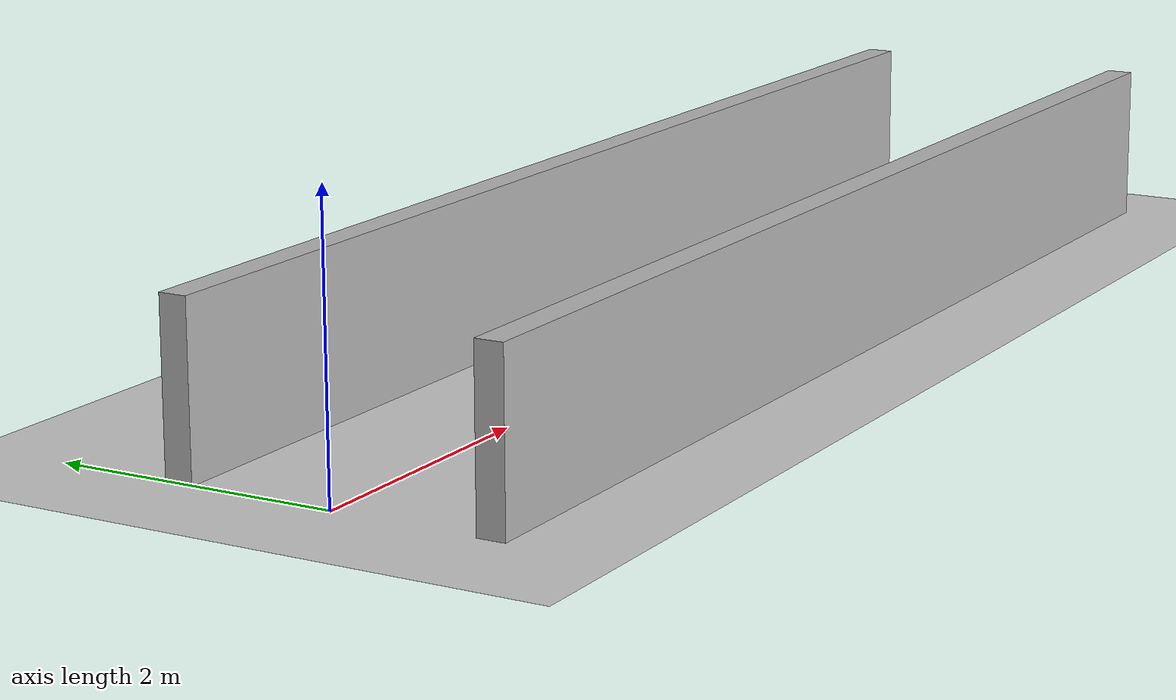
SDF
<?xml version="1.0"?>
<sdf version="1.6">
  <world name="v2-04g-r5-corridor-s5132">
    <gravity>0 0 -9.81</gravity>
    <physics name="v2_deterministic" type="ode">
      <max_step_size>0.002</max_step_size>
      <real_time_update_rate>500</real_time_update_rate>
    </physics>
    <include>
      <uri>model://sun</uri>
    </include>
    <include>
      <uri>model://ground_plane</uri>
    </include>
    <model name="corridor-left">
      <static>true</static>
      <pose>4.993904726 1.111682724 0.600000000 0 0 -0.001283528</pose>
      <link name="link">
        <collision name="collision">
          <geometry>
            <box>
              <size>10.000000 0.200000 1.200000</size>
            </box>
          </geometry>
        </collision>
        <visual name="visual">
          <geometry>
            <box>
              <size>10.000000 0.200000 1.200000</size>
            </box>
          </geometry>
        </visual>
      </link>
    </model>
    <model name="corridor-right">
      <static>true</static>
      <pose>5.005876034 -1.110421173 0.600000000 0 0 0.002585259</pose>
      <link name="link">
        <collision name="collision">
          <geometry>
            <box>
              <size>10.000000 0.200000 1.200000</size>
            </box>
          </geometry>
        </collision>
        <visual name="visual">
          <geometry>
            <box>
              <size>10.000000 0.200000 1.200000</size>
            </box>
          </geometry>
        </visual>
      </link>
    </model>
  </world>
</sdf>
